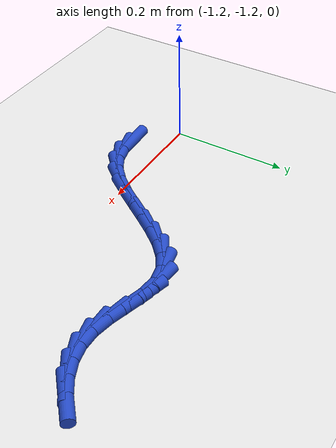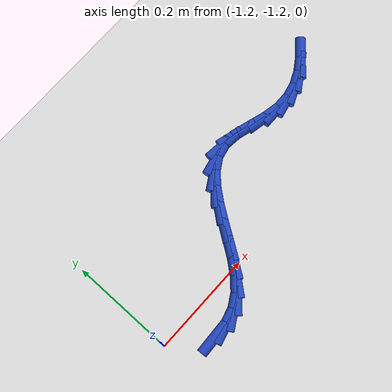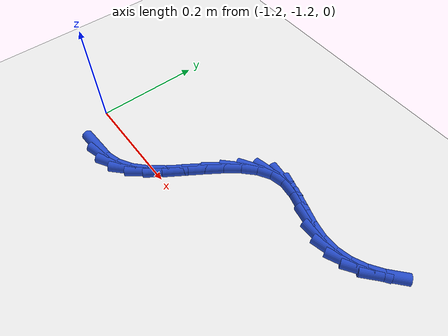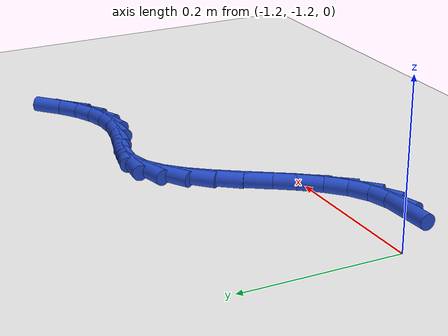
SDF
<sdf version="1.6">
 <world name="default">
  <model name="ground_plane">
   <static>1</static>
   <link name="link">
    <collision name="collision">
     <geometry><plane><normal>0 0 1</normal><size>100 100</size></plane></geometry>
     <surface><friction><ode><mu>100</mu><mu2>50</mu2></ode></friction></surface>
    </collision>
    <visual name="visual">
     <cast_shadows>0</cast_shadows>
     <geometry><plane><normal>0 0 1</normal><size>100 100</size></plane></geometry>
     <material>
      <script><uri>file://media/materials/scripts/gazebo.material</uri><name>Gazebo/WhiteGlow</name></script>
     </material>
    </visual>
   </link>
  </model>
  <model name="line">
   <link name="link_180">
    <pose>-1.1255562173551987 -1.2556638127010495 0.01 0 1.57 0.05005798018555883</pose>
    <collision name="collision">
     <geometry><cylinder><radius>0.01</radius><length>0.08</length></cylinder></geometry>
    </collision>
    <visual name="visual">
     <material>
      <script><name>Gazebo/Blue</name><uri>file://media/materials/scripts/gazebo.material</uri></script>
     </material>
     <geometry><cylinder><radius>0.01</radius><length>0.08</length></cylinder></geometry>
    </visual>
   </link>
   <link name="link_181">
    <pose>-1.0973169199000348 -1.2542490285884662 0.01 0 1.57 0.27596793421507837</pose>
    <collision name="collision">
     <geometry><cylinder><radius>0.01</radius><length>0.08</length></cylinder></geometry>
    </collision>
    <visual name="visual">
     <material>
      <script><name>Gazebo/Blue</name><uri>file://media/materials/scripts/gazebo.material</uri></script>
     </material>
     <geometry><cylinder><radius>0.01</radius><length>0.08</length></cylinder></geometry>
    </visual>
   </link>
   <link name="link_182">
    <pose>-1.070876708605118 -1.246761322284081 0.01 0 1.57 0.5334165987025886</pose>
    <collision name="collision">
     <geometry><cylinder><radius>0.01</radius><length>0.08</length></cylinder></geometry>
    </collision>
    <visual name="visual">
     <material>
      <script><name>Gazebo/Blue</name><uri>file://media/materials/scripts/gazebo.material</uri></script>
     </material>
     <geometry><cylinder><radius>0.01</radius><length>0.08</length></cylinder></geometry>
    </visual>
   </link>
   <link name="link_183">
    <pose>-1.0466413338788836 -1.2324499518206202 0.01 0 1.57 0.7540314147545608</pose>
    <collision name="collision">
     <geometry><cylinder><radius>0.01</radius><length>0.08</length></cylinder></geometry>
    </collision>
    <visual name="visual">
     <material>
      <script><name>Gazebo/Blue</name><uri>file://media/materials/scripts/gazebo.material</uri></script>
     </material>
     <geometry><cylinder><radius>0.01</radius><length>0.08</length></cylinder></geometry>
    </visual>
   </link>
   <link name="link_184">
    <pose>-1.0245718478605885 -1.211723282466642 0.01 0 1.57 0.8917063292232467</pose>
    <collision name="collision">
     <geometry><cylinder><radius>0.01</radius><length>0.08</length></cylinder></geometry>
    </collision>
    <visual name="visual">
     <material>
      <script><name>Gazebo/Blue</name><uri>file://media/materials/scripts/gazebo.material</uri></script>
     </material>
     <geometry><cylinder><radius>0.01</radius><length>0.08</length></cylinder></geometry>
    </visual>
   </link>
   <link name="link_185">
    <pose>-1.0041023197255612 -1.1863632620049247 0.01 0 1.57 0.9654876069276314</pose>
    <collision name="collision">
     <geometry><cylinder><radius>0.01</radius><length>0.08</length></cylinder></geometry>
    </collision>
    <visual name="visual">
     <material>
      <script><name>Gazebo/Blue</name><uri>file://media/materials/scripts/gazebo.material</uri></script>
     </material>
     <geometry><cylinder><radius>0.01</radius><length>0.08</length></cylinder></geometry>
    </visual>
   </link>
   <link name="link_186">
    <pose>-0.9846362722603464 -1.158231457462859 0.01 0 1.57 0.9900347424297148</pose>
    <collision name="collision">
     <geometry><cylinder><radius>0.01</radius><length>0.08</length></cylinder></geometry>
    </collision>
    <visual name="visual">
     <material>
      <script><name>Gazebo/Blue</name><uri>file://media/materials/scripts/gazebo.material</uri></script>
     </material>
     <geometry><cylinder><radius>0.01</radius><length>0.08</length></cylinder></geometry>
    </visual>
   </link>
   <link name="link_187">
    <pose>-0.9655772282514878 -1.1291894358678314 0.01 0 1.57 0.9700533345430782</pose>
    <collision name="collision">
     <geometry><cylinder><radius>0.01</radius><length>0.08</length></cylinder></geometry>
    </collision>
    <visual name="visual">
     <material>
      <script><name>Gazebo/Blue</name><uri>file://media/materials/scripts/gazebo.material</uri></script>
     </material>
     <geometry><cylinder><radius>0.01</radius><length>0.08</length></cylinder></geometry>
    </visual>
   </link>
   <link name="link_188">
    <pose>-0.9463287104855288 -1.10109876424723 0.01 0 1.57 0.900600407395262</pose>
    <collision name="collision">
     <geometry><cylinder><radius>0.01</radius><length>0.08</length></cylinder></geometry>
    </collision>
    <visual name="visual">
     <material>
      <script><name>Gazebo/Blue</name><uri>file://media/materials/scripts/gazebo.material</uri></script>
     </material>
     <geometry><cylinder><radius>0.01</radius><length>0.08</length></cylinder></geometry>
    </visual>
   </link>
   <link name="link_189">
    <pose>-0.926294241749013 -1.0758210096284422 0.01 0 1.57 0.7660378247458384</pose>
    <collision name="collision">
     <geometry><cylinder><radius>0.01</radius><length>0.08</length></cylinder></geometry>
    </collision>
    <visual name="visual">
     <material>
      <script><name>Gazebo/Blue</name><uri>file://media/materials/scripts/gazebo.material</uri></script>
     </material>
     <geometry><cylinder><radius>0.01</radius><length>0.08</length></cylinder></geometry>
    </visual>
   </link>
   <link name="link_190">
    <pose>-0.9048773448284845 -1.0552177390388566 0.01 0 1.57 0.541353600293933</pose>
    <collision name="collision">
     <geometry><cylinder><radius>0.01</radius><length>0.08</length></cylinder></geometry>
    </collision>
    <visual name="visual">
     <material>
      <script><name>Gazebo/Blue</name><uri>file://media/materials/scripts/gazebo.material</uri></script>
     </material>
     <geometry><cylinder><radius>0.01</radius><length>0.08</length></cylinder></geometry>
    </visual>
   </link>
   <link name="link_191">
    <pose>-0.8814815425104869 -1.0411505195058608 0.01 0 1.57 0.21499050749156112</pose>
    <collision name="collision">
     <geometry><cylinder><radius>0.01</radius><length>0.08</length></cylinder></geometry>
    </collision>
    <visual name="visual">
     <material>
      <script><name>Gazebo/Blue</name><uri>file://media/materials/scripts/gazebo.material</uri></script>
     </material>
     <geometry><cylinder><radius>0.01</radius><length>0.08</length></cylinder></geometry>
    </visual>
   </link>
   <link name="link_192">
    <pose>-0.8555108254266159 -1.0354794169107624 0.01 0 1.57 -0.10982290941345961</pose>
    <collision name="collision">
     <geometry><cylinder><radius>0.01</radius><length>0.08</length></cylinder></geometry>
    </collision>
    <visual name="visual">
     <material>
      <script><name>Gazebo/Blue</name><uri>file://media/materials/scripts/gazebo.material</uri></script>
     </material>
     <geometry><cylinder><radius>0.01</radius><length>0.08</length></cylinder></geometry>
    </visual>
   </link>
   <link name="link_193">
    <pose>-0.8268119105225175 -1.0386439480294303 0.01 0 1.57 -0.2696555184809868</pose>
    <collision name="collision">
     <geometry><cylinder><radius>0.01</radius><length>0.08</length></cylinder></geometry>
    </collision>
    <visual name="visual">
     <material>
      <script><name>Gazebo/Blue</name><uri>file://media/materials/scripts/gazebo.material</uri></script>
     </material>
     <geometry><cylinder><radius>0.01</radius><length>0.08</length></cylinder></geometry>
    </visual>
   </link>
   <link name="link_194">
    <pose>-0.7964971839305672 -1.0470225535870452 0.01 0 1.57 -0.2936157737130843</pose>
    <collision name="collision">
     <geometry><cylinder><radius>0.01</radius><length>0.08</length></cylinder></geometry>
    </collision>
    <visual name="visual">
     <material>
      <script><name>Gazebo/Blue</name><uri>file://media/materials/scripts/gazebo.material</uri></script>
     </material>
     <geometry><cylinder><radius>0.01</radius><length>0.08</length></cylinder></geometry>
    </visual>
   </link>
   <link name="link_195">
    <pose>-0.7659037530616409 -1.0562726247551097 0.01 0 1.57 -0.1939370153275308</pose>
    <collision name="collision">
     <geometry><cylinder><radius>0.01</radius><length>0.08</length></cylinder></geometry>
    </collision>
    <visual name="visual">
     <material>
      <script><name>Gazebo/Blue</name><uri>file://media/materials/scripts/gazebo.material</uri></script>
     </material>
     <geometry><cylinder><radius>0.01</radius><length>0.08</length></cylinder></geometry>
    </visual>
   </link>
   <link name="link_196">
    <pose>-0.7363614329833934 -1.0620749014316437 0.01 0 1.57 0.008162765121356655</pose>
    <collision name="collision">
     <geometry><cylinder><radius>0.01</radius><length>0.08</length></cylinder></geometry>
    </collision>
    <visual name="visual">
     <material>
      <script><name>Gazebo/Blue</name><uri>file://media/materials/scripts/gazebo.material</uri></script>
     </material>
     <geometry><cylinder><radius>0.01</radius><length>0.08</length></cylinder></geometry>
    </visual>
   </link>
   <link name="link_197">
    <pose>-0.7086570252316796 -1.06184875183548 0.01 0 1.57 0.22418490162838112</pose>
    <collision name="collision">
     <geometry><cylinder><radius>0.01</radius><length>0.08</length></cylinder></geometry>
    </collision>
    <visual name="visual">
     <material>
      <script><name>Gazebo/Blue</name><uri>file://media/materials/scripts/gazebo.material</uri></script>
     </material>
     <geometry><cylinder><radius>0.01</radius><length>0.08</length></cylinder></geometry>
    </visual>
   </link>
   <link name="link_198">
    <pose>-0.6826686591551887 -1.0559229435031874 0.01 0 1.57 0.42296333578937273</pose>
    <collision name="collision">
     <geometry><cylinder><radius>0.01</radius><length>0.08</length></cylinder></geometry>
    </collision>
    <visual name="visual">
     <material>
      <script><name>Gazebo/Blue</name><uri>file://media/materials/scripts/gazebo.material</uri></script>
     </material>
     <geometry><cylinder><radius>0.01</radius><length>0.08</length></cylinder></geometry>
    </visual>
   </link>
   <link name="link_199">
    <pose>-0.6581879069044941 -1.0449033840188713 0.01 0 1.57 0.5895845174151533</pose>
    <collision name="collision">
     <geometry><cylinder><radius>0.01</radius><length>0.08</length></cylinder></geometry>
    </collision>
    <visual name="visual">
     <material>
      <script><name>Gazebo/Blue</name><uri>file://media/materials/scripts/gazebo.material</uri></script>
     </material>
     <geometry><cylinder><radius>0.01</radius><length>0.08</length></cylinder></geometry>
    </visual>
   </link>
   <link name="link_200">
    <pose>-0.6350063406301683 -1.0293959809666353 0.01 0 1.57 0.7203632115359521</pose>
    <collision name="collision">
     <geometry><cylinder><radius>0.01</radius><length>0.08</length></cylinder></geometry>
    </collision>
    <visual name="visual">
     <material>
      <script><name>Gazebo/Blue</name><uri>file://media/materials/scripts/gazebo.material</uri></script>
     </material>
     <geometry><cylinder><radius>0.01</radius><length>0.08</length></cylinder></geometry>
    </visual>
   </link>
  </model>
 </world>
</sdf>
